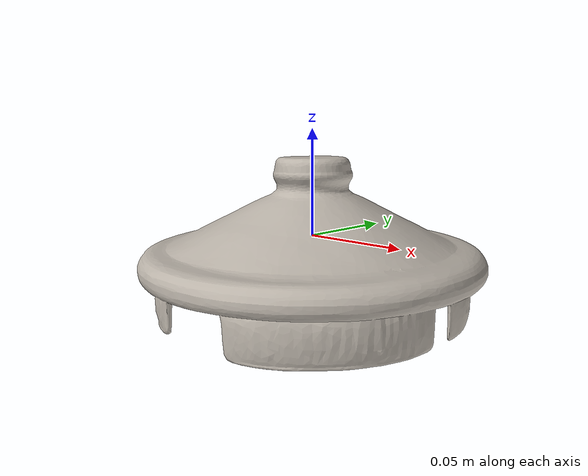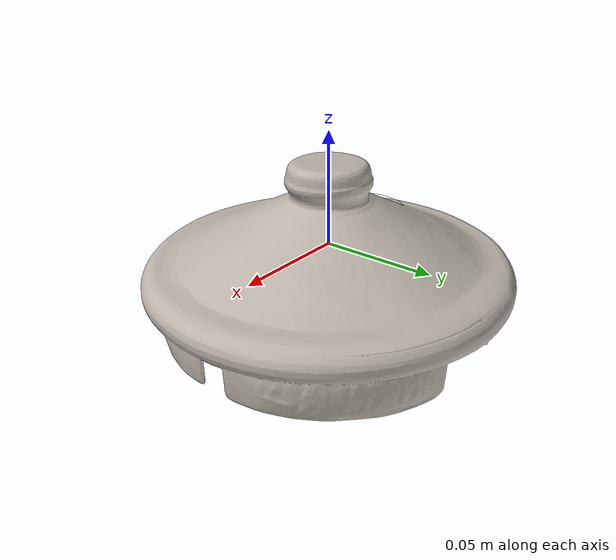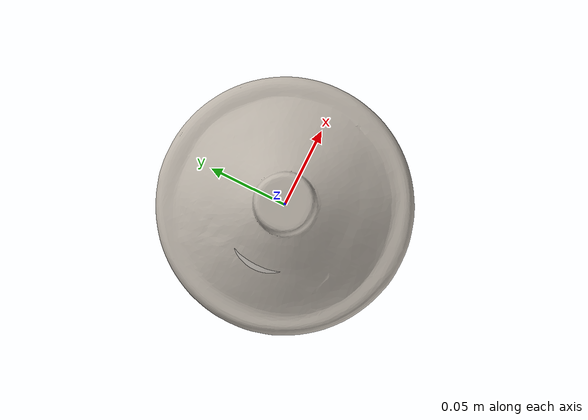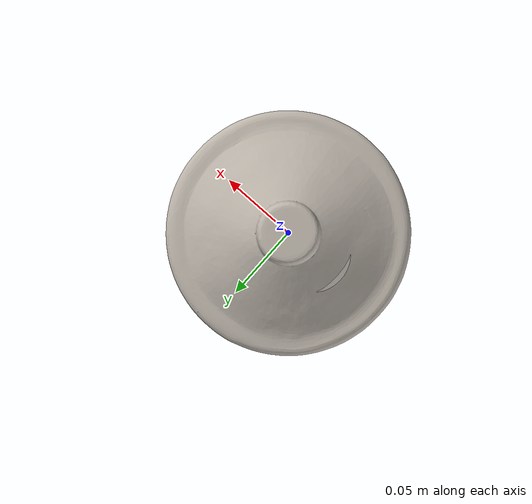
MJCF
<mujoco model="scoop">
  <asset>
    <mesh file="visual/modelo.obj" name="scoop_vis"/>
    <texture type="2d" name="tex_scoop" file="visual/material_0.png"/>
    <material name="mat_scoop" texture="tex_scoop" specular="0.3" shininess="0.3"/>
    <mesh file="colisao/casco_0.obj" name="scoop_col_0"/>
  </asset>
  <worldbody>
    <body>
      <body name="object">
        <geom type="mesh" mesh="scoop_vis" conaffinity="0" contype="0" group="1" material="mat_scoop"/>
        <geom class="collision" type="mesh" mesh="scoop_col_0"/>
      </body>
      <site rgba="0 0 0 0" size="0.005" pos="0 0 -0.01000" name="bottom_site"/>
      <site rgba="0 0 0 0" size="0.005" pos="0 0 0.01000" name="top_site"/>
      <site rgba="0 0 0 0" size="0.005" pos="0.04263 0 0" name="horizontal_radius_site"/>
    </body>
  </worldbody>
  <default>
    <default class="visual">
      <geom group="1" density="100"/>
    </default>
    <default class="collision">
      <geom group="0" mass="0.0300" solimp="0.95 0.98 0.001" solref="0.004 1" rgba="1 1 1 0.25" friction="1.2 0.05 0.002"/>
    </default>
  </default>
</mujoco>
